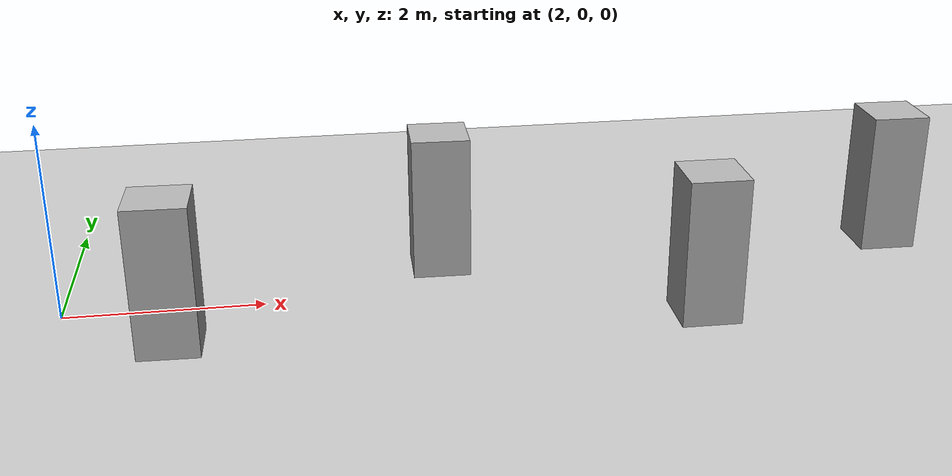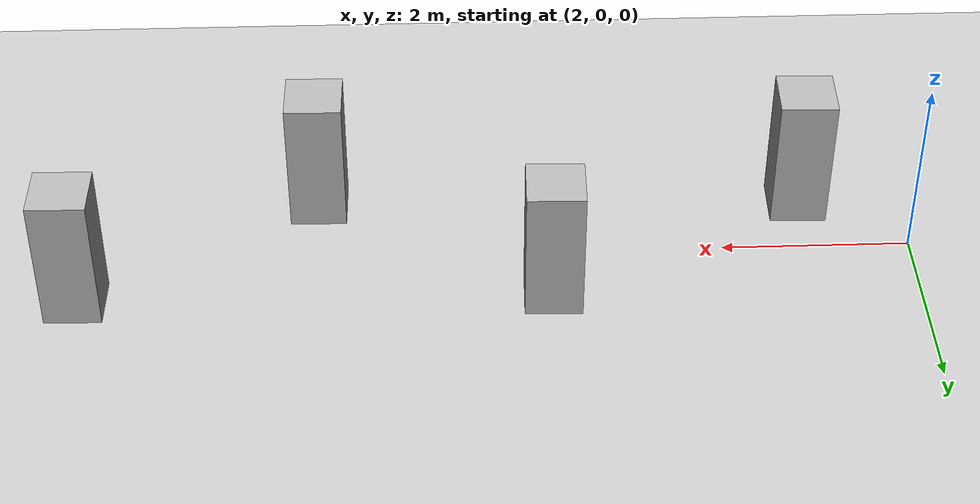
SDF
<?xml version="1.0"?>
<sdf version="1.6">
  <world name="v2-04g-static-s4908">
    <gravity>0 0 -9.81</gravity>
    <physics name="v2_deterministic" type="ode">
      <max_step_size>0.002</max_step_size>
      <real_time_update_rate>500</real_time_update_rate>
    </physics>
    <include>
      <uri>model://sun</uri>
    </include>
    <include>
      <uri>model://ground_plane</uri>
    </include>
    <model name="pillar-1">
      <static>true</static>
      <pose>3.114737122 -0.729432220 0.750000000 0 0 -0.028902194</pose>
      <link name="link">
        <collision name="collision">
          <geometry>
            <box>
              <size>0.600000 0.600000 1.500000</size>
            </box>
          </geometry>
        </collision>
        <visual name="visual">
          <geometry>
            <box>
              <size>0.600000 0.600000 1.500000</size>
            </box>
          </geometry>
        </visual>
      </link>
    </model>
    <model name="pillar-2">
      <static>true</static>
      <pose>5.843820463 0.678496863 0.750000000 0 0 -0.026976340</pose>
      <link name="link">
        <collision name="collision">
          <geometry>
            <box>
              <size>0.600000 0.600000 1.500000</size>
            </box>
          </geometry>
        </collision>
        <visual name="visual">
          <geometry>
            <box>
              <size>0.600000 0.600000 1.500000</size>
            </box>
          </geometry>
        </visual>
      </link>
    </model>
    <model name="pillar-3">
      <static>true</static>
      <pose>8.307378298 -0.851847206 0.750000000 0 0 -0.013723970</pose>
      <link name="link">
        <collision name="collision">
          <geometry>
            <box>
              <size>0.600000 0.600000 1.500000</size>
            </box>
          </geometry>
        </collision>
        <visual name="visual">
          <geometry>
            <box>
              <size>0.600000 0.600000 1.500000</size>
            </box>
          </geometry>
        </visual>
      </link>
    </model>
    <model name="pillar-4">
      <static>true</static>
      <pose>10.793349732 0.644370649 0.750000000 0 0 -0.021820590</pose>
      <link name="link">
        <collision name="collision">
          <geometry>
            <box>
              <size>0.600000 0.600000 1.500000</size>
            </box>
          </geometry>
        </collision>
        <visual name="visual">
          <geometry>
            <box>
              <size>0.600000 0.600000 1.500000</size>
            </box>
          </geometry>
        </visual>
      </link>
    </model>
  </world>
</sdf>
